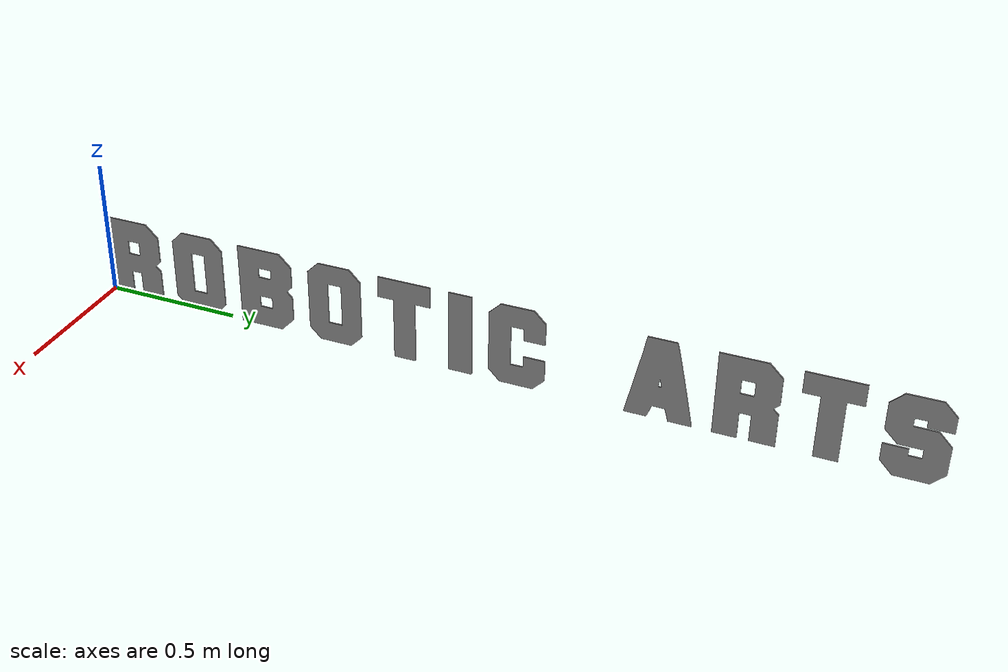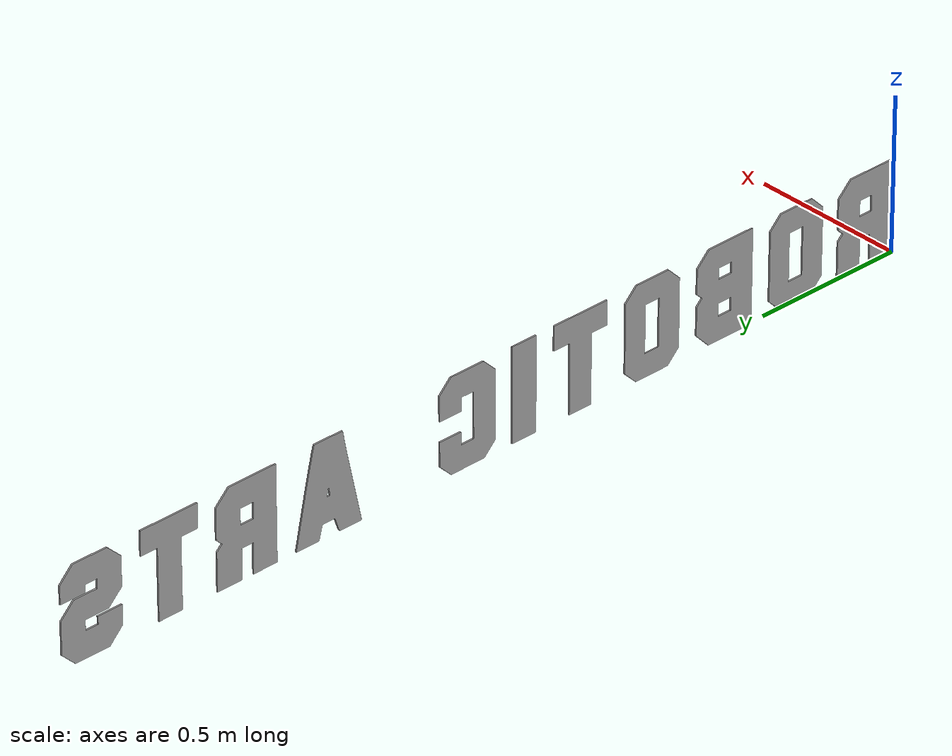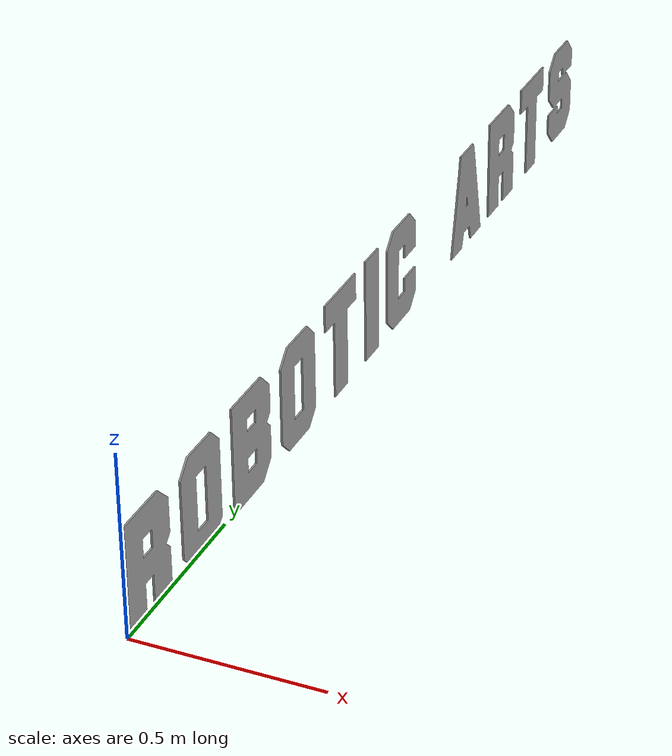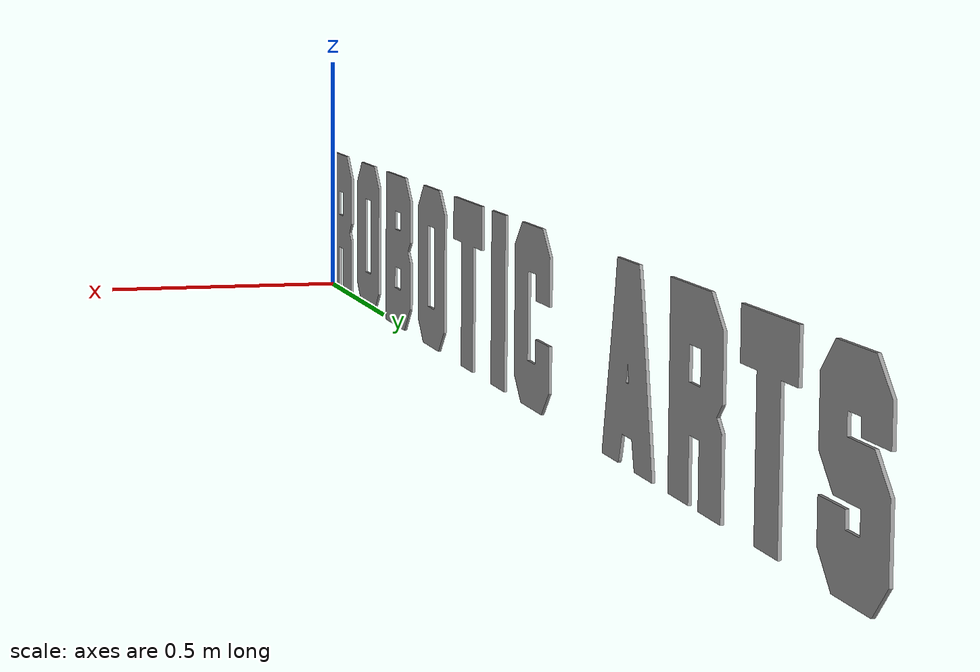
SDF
<?xml version='1.0'?>
<sdf version='1.6'>
  <model name='rai_roboticarts_name'>
    <link name='link_1'>
      <pose frame=''>0 0 0 1.57 -0 1.57</pose>
      <inertial>
        <mass>1</mass>
        <inertia>
          <ixx>0.166667</ixx>
          <ixy>0</ixy>
          <ixz>0</ixz>
          <iyy>0.166667</iyy>
          <iyz>0</iyz>
          <izz>0.166667</izz>
        </inertia>
        <pose frame=''>0 0 0 0 -0 0</pose>
      </inertial>
      <self_collide>0</self_collide>
      <kinematic>0</kinematic>
      <gravity>0</gravity>
      <visual name='visual'>
        <pose frame=''>0 0 0 0 -0 0</pose>
        <geometry>
          <mesh>
 	    <uri>model://rai_roboticarts_name/meshes/rai_roboticarts_name.STL</uri>
            <scale>1 1 1</scale>
          </mesh>
        </geometry>
        <material>
          <lighting>1</lighting>
          <script>
            <uri>file://media/materials/scripts/gazebo.material</uri>
            <name>Gazebo/Grey</name>
          </script>
          <ambient>0 0 0 1</ambient>
          <diffuse>0 0 0 1</diffuse>
          <specular>0.01 0.01 0.01 1</specular>
          <emissive>0 0 0 1</emissive>
          <shader type='vertex'>
            <normal_map>__default__</normal_map>
          </shader>
        </material>
        <cast_shadows>1</cast_shadows>
        <transparency>0</transparency>
      </visual>
    </link>
    <static>1</static>
    <allow_auto_disable>1</allow_auto_disable>
  </model>
</sdf>
